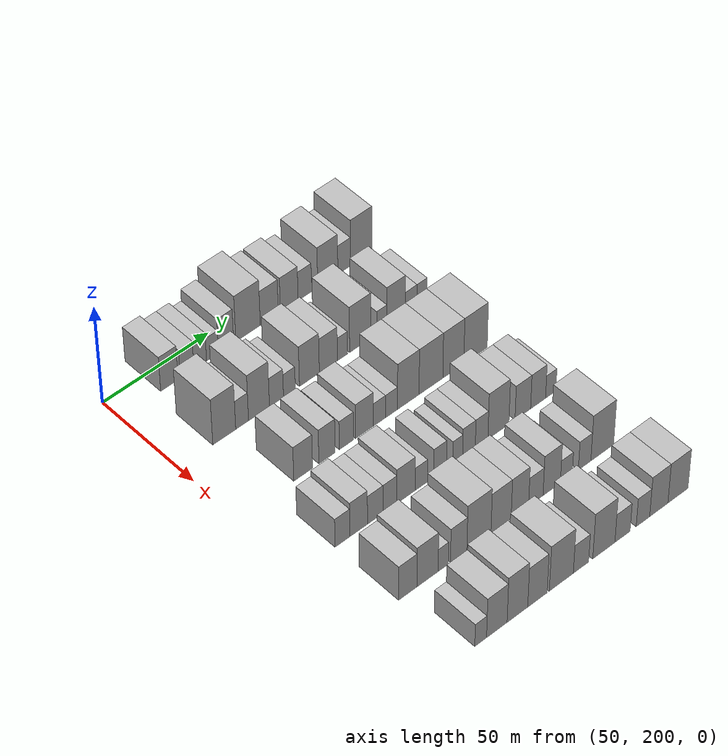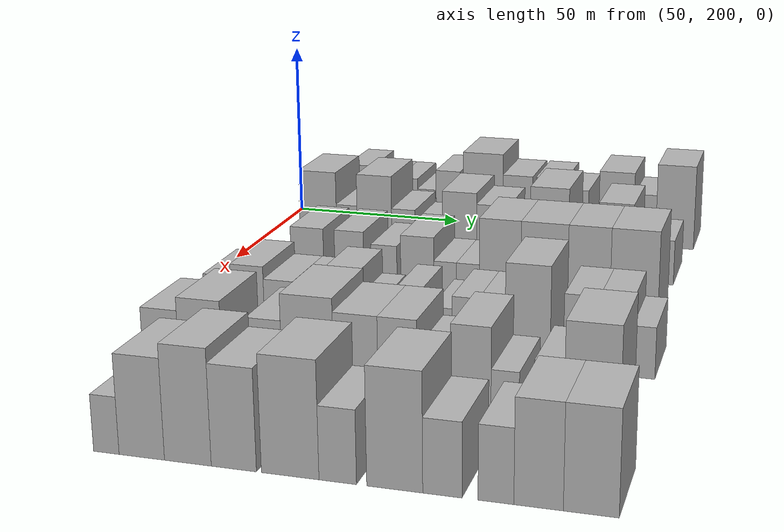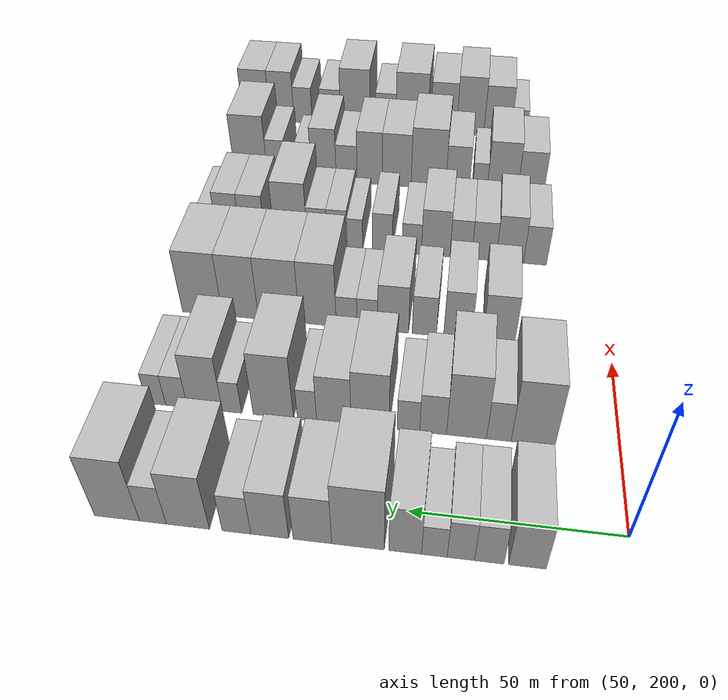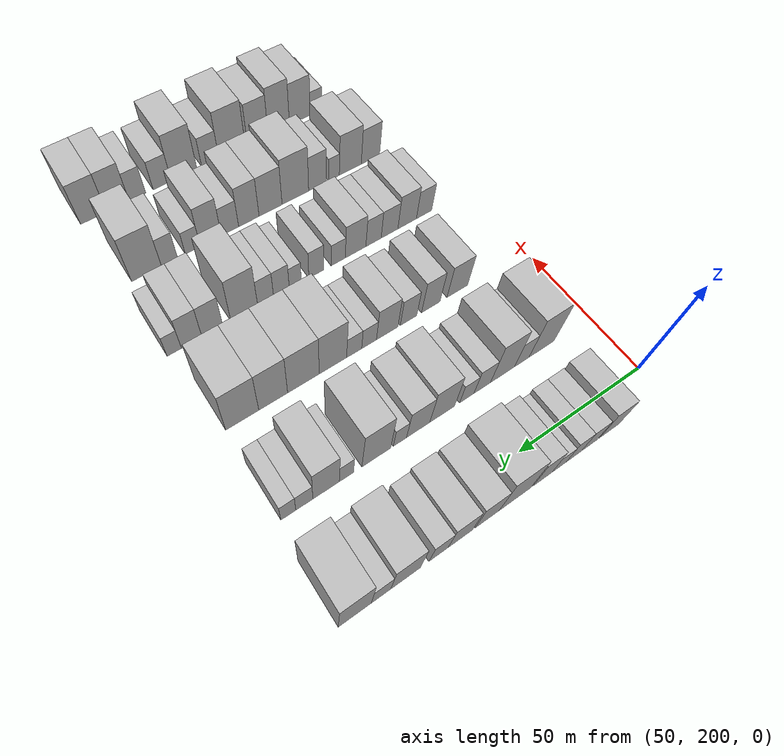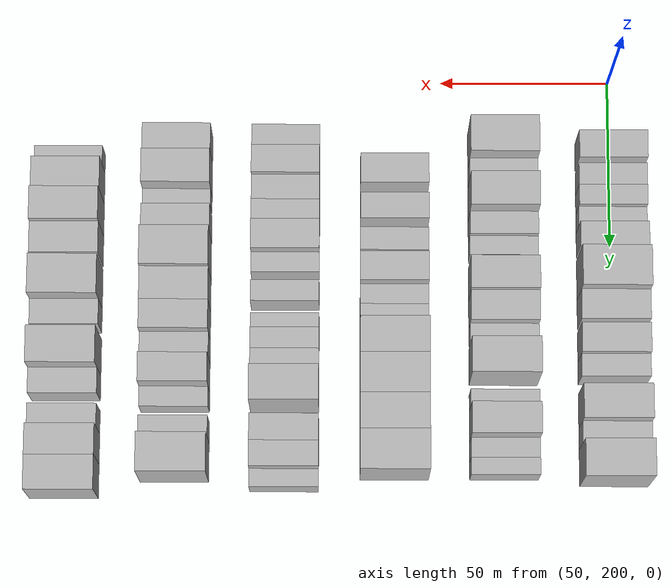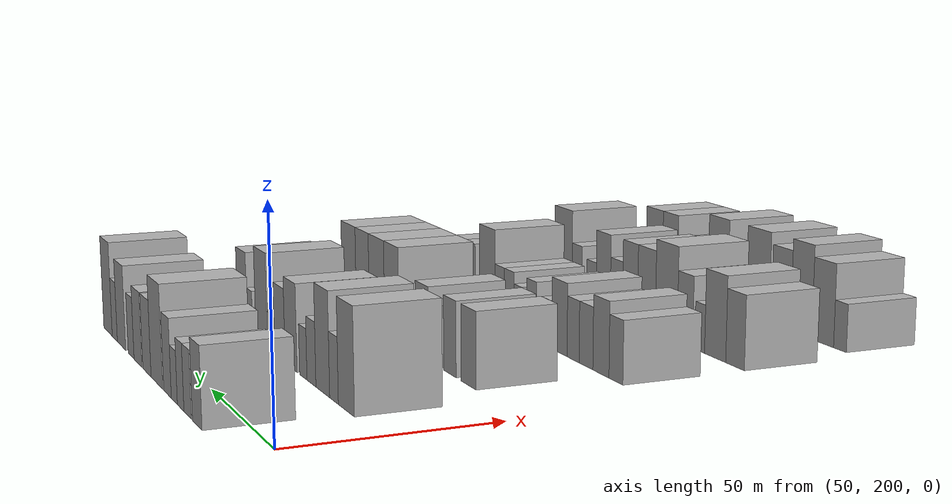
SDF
<sdf version="1.6">
 <world name="default">
  <model name="building_90">
   <static>1</static>
   <pose>50.0000 222.8602 0 0.000000 0.000000 0.000000</pose>
   <link name="link">
    <pose>0 0 9.00 0 0 0</pose>
    <collision name="collision"><geometry><box><size>20.0000 8.2015 18.0000</size></box></geometry></collision>
    <visual name="visual">
     <cast_shadows>0</cast_shadows>
     <geometry><box><size>20.0000 8.2015 18.0000</size></box></geometry>
     <material>
      <script>
       <uri>model://HANNAS_wall/materials/scripts</uri>
       <uri>model://HANNAS_wall/materials/textures</uri>
       <name>vrc/HANNAS_wall</name>
      </script>
     </material>
    </visual>
   </link>
  </model>
  <model name="building_91">
   <static>1</static>
   <pose>50.0000 231.1954 0 0.000000 0.000000 0.000000</pose>
   <link name="link">
    <pose>0 0 7.50 0 0 0</pose>
    <collision name="collision"><geometry><box><size>20.0000 6.4690 15.0000</size></box></geometry></collision>
    <visual name="visual">
     <cast_shadows>0</cast_shadows>
     <geometry><box><size>20.0000 6.4690 15.0000</size></box></geometry>
     <material>
      <script>
       <uri>model://HANNAS_wall/materials/scripts</uri>
       <uri>model://HANNAS_wall/materials/textures</uri>
       <name>vrc/HANNAS_wall</name>
      </script>
     </material>
    </visual>
   </link>
  </model>
  <model name="building_92">
   <static>1</static>
   <pose>50.0000 237.4367 0 0.000000 0.000000 0.000000</pose>
   <link name="link">
    <pose>0 0 7.50 0 0 0</pose>
    <collision name="collision"><geometry><box><size>20.0000 6.0137 15.0000</size></box></geometry></collision>
    <visual name="visual">
     <cast_shadows>0</cast_shadows>
     <geometry><box><size>20.0000 6.0137 15.0000</size></box></geometry>
     <material>
      <script>
       <uri>model://HANNAS_wall/materials/scripts</uri>
       <uri>model://HANNAS_wall/materials/textures</uri>
       <name>vrc/HANNAS_wall</name>
      </script>
     </material>
    </visual>
   </link>
  </model>
  <model name="building_93">
   <static>1</static>
   <pose>50.0000 243.2891 0 0.000000 0.000000 0.000000</pose>
   <link name="link">
    <pose>0 0 6.00 0 0 0</pose>
    <collision name="collision"><geometry><box><size>20.0000 5.6910 12.0000</size></box></geometry></collision>
    <visual name="visual">
     <cast_shadows>0</cast_shadows>
     <geometry><box><size>20.0000 5.6910 12.0000</size></box></geometry>
     <material>
      <script>
       <uri>model://HANNAS_wall/materials/scripts</uri>
       <uri>model://HANNAS_wall/materials/textures</uri>
       <name>vrc/HANNAS_wall</name>
      </script>
     </material>
    </visual>
   </link>
  </model>
  <model name="building_94">
   <static>1</static>
   <pose>50.0000 249.7929 0 0.000000 0.000000 0.000000</pose>
   <link name="link">
    <pose>0 0 9.00 0 0 0</pose>
    <collision name="collision"><geometry><box><size>20.0000 7.3165 18.0000</size></box></geometry></collision>
    <visual name="visual">
     <cast_shadows>0</cast_shadows>
     <geometry><box><size>20.0000 7.3165 18.0000</size></box></geometry>
     <material>
      <script>
       <uri>model://HANNAS_wall/materials/scripts</uri>
       <uri>model://HANNAS_wall/materials/textures</uri>
       <name>vrc/HANNAS_wall</name>
      </script>
     </material>
    </visual>
   </link>
  </model>
  <model name="building_95">
   <static>1</static>
   <pose>50.0000 260.3712 0 0.000000 0.000000 0.000000</pose>
   <link name="link">
    <pose>0 0 12.00 0 0 0</pose>
    <collision name="collision"><geometry><box><size>20.0000 11.8401 24.0000</size></box></geometry></collision>
    <visual name="visual">
     <cast_shadows>0</cast_shadows>
     <geometry><box><size>20.0000 11.8401 24.0000</size></box></geometry>
     <material>
      <script>
       <uri>model://HANNAS_wall/materials/scripts</uri>
       <uri>model://HANNAS_wall/materials/textures</uri>
       <name>vrc/HANNAS_wall</name>
      </script>
     </material>
    </visual>
   </link>
  </model>
  <model name="building_96">
   <static>1</static>
   <pose>50.0000 270.6805 0 0.000000 0.000000 0.000000</pose>
   <link name="link">
    <pose>0 0 9.00 0 0 0</pose>
    <collision name="collision"><geometry><box><size>20.0000 8.7786 18.0000</size></box></geometry></collision>
    <visual name="visual">
     <cast_shadows>0</cast_shadows>
     <geometry><box><size>20.0000 8.7786 18.0000</size></box></geometry>
     <material>
      <script>
       <uri>model://HANNAS_wall/materials/scripts</uri>
       <uri>model://HANNAS_wall/materials/textures</uri>
       <name>vrc/HANNAS_wall</name>
      </script>
     </material>
    </visual>
   </link>
  </model>
  <model name="building_97">
   <static>1</static>
   <pose>50.0000 280.4122 0 0.000000 0.000000 0.000000</pose>
   <link name="link">
    <pose>0 0 9.00 0 0 0</pose>
    <collision name="collision"><geometry><box><size>20.0000 8.6849 18.0000</size></box></geometry></collision>
    <visual name="visual">
     <cast_shadows>0</cast_shadows>
     <geometry><box><size>20.0000 8.6849 18.0000</size></box></geometry>
     <material>
      <script>
       <uri>model://HANNAS_wall/materials/scripts</uri>
       <uri>model://HANNAS_wall/materials/textures</uri>
       <name>vrc/HANNAS_wall</name>
      </script>
     </material>
    </visual>
   </link>
  </model>
  <model name="building_98">
   <static>1</static>
   <pose>50.0000 288.0822 0 0.000000 0.000000 0.000000</pose>
   <link name="link">
    <pose>0 0 7.50 0 0 0</pose>
    <collision name="collision"><geometry><box><size>20.0000 6.6551 15.0000</size></box></geometry></collision>
    <visual name="visual">
     <cast_shadows>0</cast_shadows>
     <geometry><box><size>20.0000 6.6551 15.0000</size></box></geometry>
     <material>
      <script>
       <uri>model://HANNAS_wall/materials/scripts</uri>
       <uri>model://HANNAS_wall/materials/textures</uri>
       <name>vrc/HANNAS_wall</name>
      </script>
     </material>
    </visual>
   </link>
  </model>
  <model name="building_99">
   <static>1</static>
   <pose>50.0000 299.4235 0 0.000000 0.000000 0.000000</pose>
   <link name="link">
    <pose>0 0 10.50 0 0 0</pose>
    <collision name="collision"><geometry><box><size>20.0000 10.0275 21.0000</size></box></geometry></collision>
    <visual name="visual">
     <cast_shadows>0</cast_shadows>
     <geometry><box><size>20.0000 10.0275 21.0000</size></box></geometry>
     <material>
      <script>
       <uri>model://HANNAS_wall/materials/scripts</uri>
       <uri>model://HANNAS_wall/materials/textures</uri>
       <name>vrc/HANNAS_wall</name>
      </script>
     </material>
    </visual>
   </link>
  </model>
  <model name="building_100">
   <static>1</static>
   <pose>50.0000 307.6159 0 0.000000 0.000000 0.000000</pose>
   <link name="link">
    <pose>0 0 7.50 0 0 0</pose>
    <collision name="collision"><geometry><box><size>20.0000 6.3573 15.0000</size></box></geometry></collision>
    <visual name="visual">
     <cast_shadows>0</cast_shadows>
     <geometry><box><size>20.0000 6.3573 15.0000</size></box></geometry>
     <material>
      <script>
       <uri>model://HANNAS_wall/materials/scripts</uri>
       <uri>model://HANNAS_wall/materials/textures</uri>
       <name>vrc/HANNAS_wall</name>
      </script>
     </material>
    </visual>
   </link>
  </model>
  <model name="building_101">
   <static>1</static>
   <pose>50.0000 316.1478 0 0.000000 0.000000 0.000000</pose>
   <link name="link">
    <pose>0 0 12.00 0 0 0</pose>
    <collision name="collision"><geometry><box><size>20.0000 10.7065 24.0000</size></box></geometry></collision>
    <visual name="visual">
     <cast_shadows>0</cast_shadows>
     <geometry><box><size>20.0000 10.7065 24.0000</size></box></geometry>
     <material>
      <script>
       <uri>model://HANNAS_wall/materials/scripts</uri>
       <uri>model://HANNAS_wall/materials/textures</uri>
       <name>vrc/HANNAS_wall</name>
      </script>
     </material>
    </visual>
   </link>
  </model>
  <model name="building_213">
   <static>1</static>
   <pose>82.0000 221.3044 0 0.000000 0.000000 0.000000</pose>
   <link name="link">
    <pose>0 0 12.00 0 0 0</pose>
    <collision name="collision"><geometry><box><size>20.0000 10.7495 24.0000</size></box></geometry></collision>
    <visual name="visual">
     <cast_shadows>0</cast_shadows>
     <geometry><box><size>20.0000 10.7495 24.0000</size></box></geometry>
     <material>
      <script>
       <uri>model://HANNAS_wall/materials/scripts</uri>
       <uri>model://HANNAS_wall/materials/textures</uri>
       <name>vrc/HANNAS_wall</name>
      </script>
     </material>
    </visual>
   </link>
  </model>
  <model name="building_214">
   <static>1</static>
   <pose>82.0000 229.7004 0 0.000000 0.000000 0.000000</pose>
   <link name="link">
    <pose>0 0 7.50 0 0 0</pose>
    <collision name="collision"><geometry><box><size>20.0000 6.0426 15.0000</size></box></geometry></collision>
    <visual name="visual">
     <cast_shadows>0</cast_shadows>
     <geometry><box><size>20.0000 6.0426 15.0000</size></box></geometry>
     <material>
      <script>
       <uri>model://HANNAS_wall/materials/scripts</uri>
       <uri>model://HANNAS_wall/materials/textures</uri>
       <name>vrc/HANNAS_wall</name>
      </script>
     </material>
    </visual>
   </link>
  </model>
  <model name="building_215">
   <static>1</static>
   <pose>82.0000 237.6811 0 0.000000 0.000000 0.000000</pose>
   <link name="link">
    <pose>0 0 12.00 0 0 0</pose>
    <collision name="collision"><geometry><box><size>20.0000 9.9188 24.0000</size></box></geometry></collision>
    <visual name="visual">
     <cast_shadows>0</cast_shadows>
     <geometry><box><size>20.0000 9.9188 24.0000</size></box></geometry>
     <material>
      <script>
       <uri>model://HANNAS_wall/materials/scripts</uri>
       <uri>model://HANNAS_wall/materials/textures</uri>
       <name>vrc/HANNAS_wall</name>
      </script>
     </material>
    </visual>
   </link>
  </model>
  <model name="building_216">
   <static>1</static>
   <pose>82.0000 245.9884 0 0.000000 0.000000 0.000000</pose>
   <link name="link">
    <pose>0 0 7.50 0 0 0</pose>
    <collision name="collision"><geometry><box><size>20.0000 6.6958 15.0000</size></box></geometry></collision>
    <visual name="visual">
     <cast_shadows>0</cast_shadows>
     <geometry><box><size>20.0000 6.6958 15.0000</size></box></geometry>
     <material>
      <script>
       <uri>model://HANNAS_wall/materials/scripts</uri>
       <uri>model://HANNAS_wall/materials/textures</uri>
       <name>vrc/HANNAS_wall</name>
      </script>
     </material>
    </visual>
   </link>
  </model>
  <model name="building_217">
   <static>1</static>
   <pose>82.0000 252.1632 0 0.000000 0.000000 0.000000</pose>
   <link name="link">
    <pose>0 0 6.00 0 0 0</pose>
    <collision name="collision"><geometry><box><size>20.0000 5.6539 12.0000</size></box></geometry></collision>
    <visual name="visual">
     <cast_shadows>0</cast_shadows>
     <geometry><box><size>20.0000 5.6539 12.0000</size></box></geometry>
     <material>
      <script>
       <uri>model://HANNAS_wall/materials/scripts</uri>
       <uri>model://HANNAS_wall/materials/textures</uri>
       <name>vrc/HANNAS_wall</name>
      </script>
     </material>
    </visual>
   </link>
  </model>
  <model name="building_218">
   <static>1</static>
   <pose>82.0000 261.7869 0 0.000000 0.000000 0.000000</pose>
   <link name="link">
    <pose>0 0 10.50 0 0 0</pose>
    <collision name="collision"><geometry><box><size>20.0000 9.5934 21.0000</size></box></geometry></collision>
    <visual name="visual">
     <cast_shadows>0</cast_shadows>
     <geometry><box><size>20.0000 9.5934 21.0000</size></box></geometry>
     <material>
      <script>
       <uri>model://HANNAS_wall/materials/scripts</uri>
       <uri>model://HANNAS_wall/materials/textures</uri>
       <name>vrc/HANNAS_wall</name>
      </script>
     </material>
    </visual>
   </link>
  </model>
  <model name="building_219">
   <static>1</static>
   <pose>82.0000 270.9896 0 0.000000 0.000000 0.000000</pose>
   <link name="link">
    <pose>0 0 9.00 0 0 0</pose>
    <collision name="collision"><geometry><box><size>20.0000 8.8120 18.0000</size></box></geometry></collision>
    <visual name="visual">
     <cast_shadows>0</cast_shadows>
     <geometry><box><size>20.0000 8.8120 18.0000</size></box></geometry>
     <material>
      <script>
       <uri>model://HANNAS_wall/materials/scripts</uri>
       <uri>model://HANNAS_wall/materials/textures</uri>
       <name>vrc/HANNAS_wall</name>
      </script>
     </material>
    </visual>
   </link>
  </model>
  <model name="building_220">
   <static>1</static>
   <pose>82.0000 277.8546 0 0.000000 0.000000 0.000000</pose>
   <link name="link">
    <pose>0 0 6.00 0 0 0</pose>
    <collision name="collision"><geometry><box><size>20.0000 4.9180 12.0000</size></box></geometry></collision>
    <visual name="visual">
     <cast_shadows>0</cast_shadows>
     <geometry><box><size>20.0000 4.9180 12.0000</size></box></geometry>
     <material>
      <script>
       <uri>model://HANNAS_wall/materials/scripts</uri>
       <uri>model://HANNAS_wall/materials/textures</uri>
       <name>vrc/HANNAS_wall</name>
      </script>
     </material>
    </visual>
   </link>
  </model>
  <model name="building_221">
   <static>1</static>
   <pose>82.0000 286.5206 0 0.000000 0.000000 0.000000</pose>
   <link name="link">
    <pose>0 0 12.00 0 0 0</pose>
    <collision name="collision"><geometry><box><size>20.0000 10.4140 24.0000</size></box></geometry></collision>
    <visual name="visual">
     <cast_shadows>0</cast_shadows>
     <geometry><box><size>20.0000 10.4140 24.0000</size></box></geometry>
     <material>
      <script>
       <uri>model://HANNAS_wall/materials/scripts</uri>
       <uri>model://HANNAS_wall/materials/textures</uri>
       <name>vrc/HANNAS_wall</name>
      </script>
     </material>
    </visual>
   </link>
  </model>
  <model name="building_222">
   <static>1</static>
   <pose>82.0000 297.2348 0 0.000000 0.000000 0.000000</pose>
   <link name="link">
    <pose>0 0 6.00 0 0 0</pose>
    <collision name="collision"><geometry><box><size>20.0000 5.0144 12.0000</size></box></geometry></collision>
    <visual name="visual">
     <cast_shadows>0</cast_shadows>
     <geometry><box><size>20.0000 5.0144 12.0000</size></box></geometry>
     <material>
      <script>
       <uri>model://HANNAS_wall/materials/scripts</uri>
       <uri>model://HANNAS_wall/materials/textures</uri>
       <name>vrc/HANNAS_wall</name>
      </script>
     </material>
    </visual>
   </link>
  </model>
  <model name="building_223">
   <static>1</static>
   <pose>82.0000 304.3228 0 0.000000 0.000000 0.000000</pose>
   <link name="link">
    <pose>0 0 10.50 0 0 0</pose>
    <collision name="collision"><geometry><box><size>20.0000 9.1617 21.0000</size></box></geometry></collision>
    <visual name="visual">
     <cast_shadows>0</cast_shadows>
     <geometry><box><size>20.0000 9.1617 21.0000</size></box></geometry>
     <material>
      <script>
       <uri>model://HANNAS_wall/materials/scripts</uri>
       <uri>model://HANNAS_wall/materials/textures</uri>
       <name>vrc/HANNAS_wall</name>
      </script>
     </material>
    </visual>
   </link>
  </model>
  <model name="building_224">
   <static>1</static>
   <pose>82.0000 311.7892 0 0.000000 0.000000 0.000000</pose>
   <link name="link">
    <pose>0 0 6.00 0 0 0</pose>
    <collision name="collision"><geometry><box><size>20.0000 5.7710 12.0000</size></box></geometry></collision>
    <visual name="visual">
     <cast_shadows>0</cast_shadows>
     <geometry><box><size>20.0000 5.7710 12.0000</size></box></geometry>
     <material>
      <script>
       <uri>model://HANNAS_wall/materials/scripts</uri>
       <uri>model://HANNAS_wall/materials/textures</uri>
       <name>vrc/HANNAS_wall</name>
      </script>
     </material>
    </visual>
   </link>
  </model>
  <model name="building_225">
   <static>1</static>
   <pose>82.0000 317.1797 0 0.000000 0.000000 0.000000</pose>
   <link name="link">
    <pose>0 0 6.00 0 0 0</pose>
    <collision name="collision"><geometry><box><size>20.0000 5.0100 12.0000</size></box></geometry></collision>
    <visual name="visual">
     <cast_shadows>0</cast_shadows>
     <geometry><box><size>20.0000 5.0100 12.0000</size></box></geometry>
     <material>
      <script>
       <uri>model://HANNAS_wall/materials/scripts</uri>
       <uri>model://HANNAS_wall/materials/textures</uri>
       <name>vrc/HANNAS_wall</name>
      </script>
     </material>
    </visual>
   </link>
  </model>
  <model name="building_337">
   <static>1</static>
   <pose>114.0000 230.3294 0 0.000000 0.000000 0.000000</pose>
   <link name="link">
    <pose>0 0 9.00 0 0 0</pose>
    <collision name="collision"><geometry><box><size>20.0000 8.8366 18.0000</size></box></geometry></collision>
    <visual name="visual">
     <cast_shadows>0</cast_shadows>
     <geometry><box><size>20.0000 8.8366 18.0000</size></box></geometry>
     <material>
      <script>
       <uri>model://HANNAS_wall/materials/scripts</uri>
       <uri>model://HANNAS_wall/materials/textures</uri>
       <name>vrc/HANNAS_wall</name>
      </script>
     </material>
    </visual>
   </link>
  </model>
  <model name="building_338">
   <static>1</static>
   <pose>114.0000 241.6005 0 0.000000 0.000000 0.000000</pose>
   <link name="link">
    <pose>0 0 9.00 0 0 0</pose>
    <collision name="collision"><geometry><box><size>20.0000 7.7056 18.0000</size></box></geometry></collision>
    <visual name="visual">
     <cast_shadows>0</cast_shadows>
     <geometry><box><size>20.0000 7.7056 18.0000</size></box></geometry>
     <material>
      <script>
       <uri>model://HANNAS_wall/materials/scripts</uri>
       <uri>model://HANNAS_wall/materials/textures</uri>
       <name>vrc/HANNAS_wall</name>
      </script>
     </material>
    </visual>
   </link>
  </model>
  <model name="building_339">
   <static>1</static>
   <pose>114.0000 250.8308 0 0.000000 0.000000 0.000000</pose>
   <link name="link">
    <pose>0 0 7.50 0 0 0</pose>
    <collision name="collision"><geometry><box><size>20.0000 6.7550 15.0000</size></box></geometry></collision>
    <visual name="visual">
     <cast_shadows>0</cast_shadows>
     <geometry><box><size>20.0000 6.7550 15.0000</size></box></geometry>
     <material>
      <script>
       <uri>model://HANNAS_wall/materials/scripts</uri>
       <uri>model://HANNAS_wall/materials/textures</uri>
       <name>vrc/HANNAS_wall</name>
      </script>
     </material>
    </visual>
   </link>
  </model>
  <model name="building_340">
   <static>1</static>
   <pose>114.0000 259.4964 0 0.000000 0.000000 0.000000</pose>
   <link name="link">
    <pose>0 0 9.00 0 0 0</pose>
    <collision name="collision"><geometry><box><size>20.0000 8.5762 18.0000</size></box></geometry></collision>
    <visual name="visual">
     <cast_shadows>0</cast_shadows>
     <geometry><box><size>20.0000 8.5762 18.0000</size></box></geometry>
     <material>
      <script>
       <uri>model://HANNAS_wall/materials/scripts</uri>
       <uri>model://HANNAS_wall/materials/textures</uri>
       <name>vrc/HANNAS_wall</name>
      </script>
     </material>
    </visual>
   </link>
  </model>
  <model name="building_341">
   <static>1</static>
   <pose>114.0000 266.7092 0 0.000000 0.000000 0.000000</pose>
   <link name="link">
    <pose>0 0 6.00 0 0 0</pose>
    <collision name="collision"><geometry><box><size>20.0000 5.8494 12.0000</size></box></geometry></collision>
    <visual name="visual">
     <cast_shadows>0</cast_shadows>
     <geometry><box><size>20.0000 5.8494 12.0000</size></box></geometry>
     <material>
      <script>
       <uri>model://HANNAS_wall/materials/scripts</uri>
       <uri>model://HANNAS_wall/materials/textures</uri>
       <name>vrc/HANNAS_wall</name>
      </script>
     </material>
    </visual>
   </link>
  </model>
  <model name="building_342">
   <static>1</static>
   <pose>114.0000 272.5642 0 0.000000 0.000000 0.000000</pose>
   <link name="link">
    <pose>0 0 6.00 0 0 0</pose>
    <collision name="collision"><geometry><box><size>20.0000 5.8606 12.0000</size></box></geometry></collision>
    <visual name="visual">
     <cast_shadows>0</cast_shadows>
     <geometry><box><size>20.0000 5.8606 12.0000</size></box></geometry>
     <material>
      <script>
       <uri>model://HANNAS_wall/materials/scripts</uri>
       <uri>model://HANNAS_wall/materials/textures</uri>
       <name>vrc/HANNAS_wall</name>
      </script>
     </material>
    </visual>
   </link>
  </model>
  <model name="building_343">
   <static>1</static>
   <pose>114.0000 280.7359 0 0.000000 0.000000 0.000000</pose>
   <link name="link">
    <pose>0 0 12.00 0 0 0</pose>
    <collision name="collision"><geometry><box><size>20.0000 10.4827 24.0000</size></box></geometry></collision>
    <visual name="visual">
     <cast_shadows>0</cast_shadows>
     <geometry><box><size>20.0000 10.4827 24.0000</size></box></geometry>
     <material>
      <script>
       <uri>model://HANNAS_wall/materials/scripts</uri>
       <uri>model://HANNAS_wall/materials/textures</uri>
       <name>vrc/HANNAS_wall</name>
      </script>
     </material>
    </visual>
   </link>
  </model>
  <model name="building_344">
   <static>1</static>
   <pose>114.0000 291.8193 0 0.000000 0.000000 0.000000</pose>
   <link name="link">
    <pose>0 0 12.00 0 0 0</pose>
    <collision name="collision"><geometry><box><size>20.0000 11.6842 24.0000</size></box></geometry></collision>
    <visual name="visual">
     <cast_shadows>0</cast_shadows>
     <geometry><box><size>20.0000 11.6842 24.0000</size></box></geometry>
     <material>
      <script>
       <uri>model://HANNAS_wall/materials/scripts</uri>
       <uri>model://HANNAS_wall/materials/textures</uri>
       <name>vrc/HANNAS_wall</name>
      </script>
     </material>
    </visual>
   </link>
  </model>
  <model name="building_345">
   <static>1</static>
   <pose>114.0000 302.8667 0 0.000000 0.000000 0.000000</pose>
   <link name="link">
    <pose>0 0 12.00 0 0 0</pose>
    <collision name="collision"><geometry><box><size>20.0000 10.4106 24.0000</size></box></geometry></collision>
    <visual name="visual">
     <cast_shadows>0</cast_shadows>
     <geometry><box><size>20.0000 10.4106 24.0000</size></box></geometry>
     <material>
      <script>
       <uri>model://HANNAS_wall/materials/scripts</uri>
       <uri>model://HANNAS_wall/materials/textures</uri>
       <name>vrc/HANNAS_wall</name>
      </script>
     </material>
    </visual>
   </link>
  </model>
  <model name="building_346">
   <static>1</static>
   <pose>114.0000 313.8992 0 0.000000 0.000000 0.000000</pose>
   <link name="link">
    <pose>0 0 12.00 0 0 0</pose>
    <collision name="collision"><geometry><box><size>20.0000 11.6543 24.0000</size></box></geometry></collision>
    <visual name="visual">
     <cast_shadows>0</cast_shadows>
     <geometry><box><size>20.0000 11.6543 24.0000</size></box></geometry>
     <material>
      <script>
       <uri>model://HANNAS_wall/materials/scripts</uri>
       <uri>model://HANNAS_wall/materials/textures</uri>
       <name>vrc/HANNAS_wall</name>
      </script>
     </material>
    </visual>
   </link>
  </model>
  <model name="building_453">
   <static>1</static>
   <pose>146.0000 220.0630 0 0.000000 0.000000 0.000000</pose>
   <link name="link">
    <pose>0 0 7.50 0 0 0</pose>
    <collision name="collision"><geometry><box><size>20.0000 6.9078 15.0000</size></box></geometry></collision>
    <visual name="visual">
     <cast_shadows>0</cast_shadows>
     <geometry><box><size>20.0000 6.9078 15.0000</size></box></geometry>
     <material>
      <script>
       <uri>model://HANNAS_wall/materials/scripts</uri>
       <uri>model://HANNAS_wall/materials/textures</uri>
       <name>vrc/HANNAS_wall</name>
      </script>
     </material>
    </visual>
   </link>
  </model>
  <model name="building_454">
   <static>1</static>
   <pose>146.0000 227.6513 0 0.000000 0.000000 0.000000</pose>
   <link name="link">
    <pose>0 0 9.00 0 0 0</pose>
    <collision name="collision"><geometry><box><size>20.0000 8.2689 18.0000</size></box></geometry></collision>
    <visual name="visual">
     <cast_shadows>0</cast_shadows>
     <geometry><box><size>20.0000 8.2689 18.0000</size></box></geometry>
     <material>
      <script>
       <uri>model://HANNAS_wall/materials/scripts</uri>
       <uri>model://HANNAS_wall/materials/textures</uri>
       <name>vrc/HANNAS_wall</name>
      </script>
     </material>
    </visual>
   </link>
  </model>
  <model name="building_455">
   <static>1</static>
   <pose>146.0000 235.4424 0 0.000000 0.000000 0.000000</pose>
   <link name="link">
    <pose>0 0 7.50 0 0 0</pose>
    <collision name="collision"><geometry><box><size>20.0000 7.3133 15.0000</size></box></geometry></collision>
    <visual name="visual">
     <cast_shadows>0</cast_shadows>
     <geometry><box><size>20.0000 7.3133 15.0000</size></box></geometry>
     <material>
      <script>
       <uri>model://HANNAS_wall/materials/scripts</uri>
       <uri>model://HANNAS_wall/materials/textures</uri>
       <name>vrc/HANNAS_wall</name>
      </script>
     </material>
    </visual>
   </link>
  </model>
  <model name="building_456">
   <static>1</static>
   <pose>146.0000 242.3882 0 0.000000 0.000000 0.000000</pose>
   <link name="link">
    <pose>0 0 7.50 0 0 0</pose>
    <collision name="collision"><geometry><box><size>20.0000 6.5782 15.0000</size></box></geometry></collision>
    <visual name="visual">
     <cast_shadows>0</cast_shadows>
     <geometry><box><size>20.0000 6.5782 15.0000</size></box></geometry>
     <material>
      <script>
       <uri>model://HANNAS_wall/materials/scripts</uri>
       <uri>model://HANNAS_wall/materials/textures</uri>
       <name>vrc/HANNAS_wall</name>
      </script>
     </material>
    </visual>
   </link>
  </model>
  <model name="building_457">
   <static>1</static>
   <pose>146.0000 250.0303 0 0.000000 0.000000 0.000000</pose>
   <link name="link">
    <pose>0 0 9.00 0 0 0</pose>
    <collision name="collision"><geometry><box><size>20.0000 8.7062 18.0000</size></box></geometry></collision>
    <visual name="visual">
     <cast_shadows>0</cast_shadows>
     <geometry><box><size>20.0000 8.7062 18.0000</size></box></geometry>
     <material>
      <script>
       <uri>model://HANNAS_wall/materials/scripts</uri>
       <uri>model://HANNAS_wall/materials/textures</uri>
       <name>vrc/HANNAS_wall</name>
      </script>
     </material>
    </visual>
   </link>
  </model>
  <model name="building_458">
   <static>1</static>
   <pose>146.0000 257.3340 0 0.000000 0.000000 0.000000</pose>
   <link name="link">
    <pose>0 0 6.00 0 0 0</pose>
    <collision name="collision"><geometry><box><size>20.0000 5.9013 12.0000</size></box></geometry></collision>
    <visual name="visual">
     <cast_shadows>0</cast_shadows>
     <geometry><box><size>20.0000 5.9013 12.0000</size></box></geometry>
     <material>
      <script>
       <uri>model://HANNAS_wall/materials/scripts</uri>
       <uri>model://HANNAS_wall/materials/textures</uri>
       <name>vrc/HANNAS_wall</name>
      </script>
     </material>
    </visual>
   </link>
  </model>
  <model name="building_459">
   <static>1</static>
   <pose>146.0000 266.3471 0 0.000000 0.000000 0.000000</pose>
   <link name="link">
    <pose>0 0 7.50 0 0 0</pose>
    <collision name="collision"><geometry><box><size>20.0000 6.1248 15.0000</size></box></geometry></collision>
    <visual name="visual">
     <cast_shadows>0</cast_shadows>
     <geometry><box><size>20.0000 6.1248 15.0000</size></box></geometry>
     <material>
      <script>
       <uri>model://HANNAS_wall/materials/scripts</uri>
       <uri>model://HANNAS_wall/materials/textures</uri>
       <name>vrc/HANNAS_wall</name>
      </script>
     </material>
    </visual>
   </link>
  </model>
  <model name="building_460">
   <static>1</static>
   <pose>146.0000 274.8221 0 0.000000 0.000000 0.000000</pose>
   <link name="link">
    <pose>0 0 6.00 0 0 0</pose>
    <collision name="collision"><geometry><box><size>20.0000 4.8253 12.0000</size></box></geometry></collision>
    <visual name="visual">
     <cast_shadows>0</cast_shadows>
     <geometry><box><size>20.0000 4.8253 12.0000</size></box></geometry>
     <material>
      <script>
       <uri>model://HANNAS_wall/materials/scripts</uri>
       <uri>model://HANNAS_wall/materials/textures</uri>
       <name>vrc/HANNAS_wall</name>
      </script>
     </material>
    </visual>
   </link>
  </model>
  <model name="building_461">
   <static>1</static>
   <pose>146.0000 280.3233 0 0.000000 0.000000 0.000000</pose>
   <link name="link">
    <pose>0 0 7.50 0 0 0</pose>
    <collision name="collision"><geometry><box><size>20.0000 6.1771 15.0000</size></box></geometry></collision>
    <visual name="visual">
     <cast_shadows>0</cast_shadows>
     <geometry><box><size>20.0000 6.1771 15.0000</size></box></geometry>
     <material>
      <script>
       <uri>model://HANNAS_wall/materials/scripts</uri>
       <uri>model://HANNAS_wall/materials/textures</uri>
       <name>vrc/HANNAS_wall</name>
      </script>
     </material>
    </visual>
   </link>
  </model>
  <model name="building_462">
   <static>1</static>
   <pose>146.0000 286.5018 0 0.000000 0.000000 0.000000</pose>
   <link name="link">
    <pose>0 0 7.50 0 0 0</pose>
    <collision name="collision"><geometry><box><size>20.0000 6.1799 15.0000</size></box></geometry></collision>
    <visual name="visual">
     <cast_shadows>0</cast_shadows>
     <geometry><box><size>20.0000 6.1799 15.0000</size></box></geometry>
     <material>
      <script>
       <uri>model://HANNAS_wall/materials/scripts</uri>
       <uri>model://HANNAS_wall/materials/textures</uri>
       <name>vrc/HANNAS_wall</name>
      </script>
     </material>
    </visual>
   </link>
  </model>
  <model name="building_463">
   <static>1</static>
   <pose>146.0000 294.7478 0 0.000000 0.000000 0.000000</pose>
   <link name="link">
    <pose>0 0 12.00 0 0 0</pose>
    <collision name="collision"><geometry><box><size>20.0000 10.3122 24.0000</size></box></geometry></collision>
    <visual name="visual">
     <cast_shadows>0</cast_shadows>
     <geometry><box><size>20.0000 10.3122 24.0000</size></box></geometry>
     <material>
      <script>
       <uri>model://HANNAS_wall/materials/scripts</uri>
       <uri>model://HANNAS_wall/materials/textures</uri>
       <name>vrc/HANNAS_wall</name>
      </script>
     </material>
    </visual>
   </link>
  </model>
  <model name="building_464">
   <static>1</static>
   <pose>146.0000 306.7866 0 0.000000 0.000000 0.000000</pose>
   <link name="link">
    <pose>0 0 9.00 0 0 0</pose>
    <collision name="collision"><geometry><box><size>20.0000 7.7654 18.0000</size></box></geometry></collision>
    <visual name="visual">
     <cast_shadows>0</cast_shadows>
     <geometry><box><size>20.0000 7.7654 18.0000</size></box></geometry>
     <material>
      <script>
       <uri>model://HANNAS_wall/materials/scripts</uri>
       <uri>model://HANNAS_wall/materials/textures</uri>
       <name>vrc/HANNAS_wall</name>
      </script>
     </material>
    </visual>
   </link>
  </model>
  <model name="building_465">
   <static>1</static>
   <pose>146.0000 314.3967 0 0.000000 0.000000 0.000000</pose>
   <link name="link">
    <pose>0 0 9.00 0 0 0</pose>
    <collision name="collision"><geometry><box><size>20.0000 7.4548 18.0000</size></box></geometry></collision>
    <visual name="visual">
     <cast_shadows>0</cast_shadows>
     <geometry><box><size>20.0000 7.4548 18.0000</size></box></geometry>
     <material>
      <script>
       <uri>model://HANNAS_wall/materials/scripts</uri>
       <uri>model://HANNAS_wall/materials/textures</uri>
       <name>vrc/HANNAS_wall</name>
      </script>
     </material>
    </visual>
   </link>
  </model>
  <model name="building_466">
   <static>1</static>
   <pose>146.0000 320.7134 0 0.000000 0.000000 0.000000</pose>
   <link name="link">
    <pose>0 0 6.00 0 0 0</pose>
    <collision name="collision"><geometry><box><size>20.0000 5.1786 12.0000</size></box></geometry></collision>
    <visual name="visual">
     <cast_shadows>0</cast_shadows>
     <geometry><box><size>20.0000 5.1786 12.0000</size></box></geometry>
     <material>
      <script>
       <uri>model://HANNAS_wall/materials/scripts</uri>
       <uri>model://HANNAS_wall/materials/textures</uri>
       <name>vrc/HANNAS_wall</name>
      </script>
     </material>
    </visual>
   </link>
  </model>
  <model name="building_576">
   <static>1</static>
   <pose>178.0000 221.2381 0 0.000000 0.000000 0.000000</pose>
   <link name="link">
    <pose>0 0 9.00 0 0 0</pose>
    <collision name="collision"><geometry><box><size>20.0000 8.4650 18.0000</size></box></geometry></collision>
    <visual name="visual">
     <cast_shadows>0</cast_shadows>
     <geometry><box><size>20.0000 8.4650 18.0000</size></box></geometry>
     <material>
      <script>
       <uri>model://HANNAS_wall/materials/scripts</uri>
       <uri>model://HANNAS_wall/materials/textures</uri>
       <name>vrc/HANNAS_wall</name>
      </script>
     </material>
    </visual>
   </link>
  </model>
  <model name="building_577">
   <static>1</static>
   <pose>178.0000 230.4623 0 0.000000 0.000000 0.000000</pose>
   <link name="link">
    <pose>0 0 10.50 0 0 0</pose>
    <collision name="collision"><geometry><box><size>20.0000 9.9835 21.0000</size></box></geometry></collision>
    <visual name="visual">
     <cast_shadows>0</cast_shadows>
     <geometry><box><size>20.0000 9.9835 21.0000</size></box></geometry>
     <material>
      <script>
       <uri>model://HANNAS_wall/materials/scripts</uri>
       <uri>model://HANNAS_wall/materials/textures</uri>
       <name>vrc/HANNAS_wall</name>
      </script>
     </material>
    </visual>
   </link>
  </model>
  <model name="building_578">
   <static>1</static>
   <pose>178.0000 237.8578 0 0.000000 0.000000 0.000000</pose>
   <link name="link">
    <pose>0 0 6.00 0 0 0</pose>
    <collision name="collision"><geometry><box><size>20.0000 4.8075 12.0000</size></box></geometry></collision>
    <visual name="visual">
     <cast_shadows>0</cast_shadows>
     <geometry><box><size>20.0000 4.8075 12.0000</size></box></geometry>
     <material>
      <script>
       <uri>model://HANNAS_wall/materials/scripts</uri>
       <uri>model://HANNAS_wall/materials/textures</uri>
       <name>vrc/HANNAS_wall</name>
      </script>
     </material>
    </visual>
   </link>
  </model>
  <model name="building_579">
   <static>1</static>
   <pose>178.0000 245.1525 0 0.000000 0.000000 0.000000</pose>
   <link name="link">
    <pose>0 0 9.00 0 0 0</pose>
    <collision name="collision"><geometry><box><size>20.0000 7.7819 18.0000</size></box></geometry></collision>
    <visual name="visual">
     <cast_shadows>0</cast_shadows>
     <geometry><box><size>20.0000 7.7819 18.0000</size></box></geometry>
     <material>
      <script>
       <uri>model://HANNAS_wall/materials/scripts</uri>
       <uri>model://HANNAS_wall/materials/textures</uri>
       <name>vrc/HANNAS_wall</name>
      </script>
     </material>
    </visual>
   </link>
  </model>
  <model name="building_580">
   <static>1</static>
   <pose>178.0000 254.7879 0 0.000000 0.000000 0.000000</pose>
   <link name="link">
    <pose>0 0 12.00 0 0 0</pose>
    <collision name="collision"><geometry><box><size>20.0000 11.4891 24.0000</size></box></geometry></collision>
    <visual name="visual">
     <cast_shadows>0</cast_shadows>
     <geometry><box><size>20.0000 11.4891 24.0000</size></box></geometry>
     <material>
      <script>
       <uri>model://HANNAS_wall/materials/scripts</uri>
       <uri>model://HANNAS_wall/materials/textures</uri>
       <name>vrc/HANNAS_wall</name>
      </script>
     </material>
    </visual>
   </link>
  </model>
  <model name="building_581">
   <static>1</static>
   <pose>178.0000 265.3784 0 0.000000 0.000000 0.000000</pose>
   <link name="link">
    <pose>0 0 10.50 0 0 0</pose>
    <collision name="collision"><geometry><box><size>20.0000 9.6919 21.0000</size></box></geometry></collision>
    <visual name="visual">
     <cast_shadows>0</cast_shadows>
     <geometry><box><size>20.0000 9.6919 21.0000</size></box></geometry>
     <material>
      <script>
       <uri>model://HANNAS_wall/materials/scripts</uri>
       <uri>model://HANNAS_wall/materials/textures</uri>
       <name>vrc/HANNAS_wall</name>
      </script>
     </material>
    </visual>
   </link>
  </model>
  <model name="building_582">
   <static>1</static>
   <pose>178.0000 274.4435 0 0.000000 0.000000 0.000000</pose>
   <link name="link">
    <pose>0 0 10.50 0 0 0</pose>
    <collision name="collision"><geometry><box><size>20.0000 8.4382 21.0000</size></box></geometry></collision>
    <visual name="visual">
     <cast_shadows>0</cast_shadows>
     <geometry><box><size>20.0000 8.4382 21.0000</size></box></geometry>
     <material>
      <script>
       <uri>model://HANNAS_wall/materials/scripts</uri>
       <uri>model://HANNAS_wall/materials/textures</uri>
       <name>vrc/HANNAS_wall</name>
      </script>
     </material>
    </visual>
   </link>
  </model>
  <model name="building_583">
   <static>1</static>
   <pose>178.0000 282.1900 0 0.000000 0.000000 0.000000</pose>
   <link name="link">
    <pose>0 0 7.50 0 0 0</pose>
    <collision name="collision"><geometry><box><size>20.0000 7.0546 15.0000</size></box></geometry></collision>
    <visual name="visual">
     <cast_shadows>0</cast_shadows>
     <geometry><box><size>20.0000 7.0546 15.0000</size></box></geometry>
     <material>
      <script>
       <uri>model://HANNAS_wall/materials/scripts</uri>
       <uri>model://HANNAS_wall/materials/textures</uri>
       <name>vrc/HANNAS_wall</name>
      </script>
     </material>
    </visual>
   </link>
  </model>
  <model name="building_584">
   <static>1</static>
   <pose>178.0000 289.9632 0 0.000000 0.000000 0.000000</pose>
   <link name="link">
    <pose>0 0 10.50 0 0 0</pose>
    <collision name="collision"><geometry><box><size>20.0000 8.4919 21.0000</size></box></geometry></collision>
    <visual name="visual">
     <cast_shadows>0</cast_shadows>
     <geometry><box><size>20.0000 8.4919 21.0000</size></box></geometry>
     <material>
      <script>
       <uri>model://HANNAS_wall/materials/scripts</uri>
       <uri>model://HANNAS_wall/materials/textures</uri>
       <name>vrc/HANNAS_wall</name>
      </script>
     </material>
    </visual>
   </link>
  </model>
  <model name="building_585">
   <static>1</static>
   <pose>178.0000 297.1403 0 0.000000 0.000000 0.000000</pose>
   <link name="link">
    <pose>0 0 6.00 0 0 0</pose>
    <collision name="collision"><geometry><box><size>20.0000 5.8623 12.0000</size></box></geometry></collision>
    <visual name="visual">
     <cast_shadows>0</cast_shadows>
     <geometry><box><size>20.0000 5.8623 12.0000</size></box></geometry>
     <material>
      <script>
       <uri>model://HANNAS_wall/materials/scripts</uri>
       <uri>model://HANNAS_wall/materials/textures</uri>
       <name>vrc/HANNAS_wall</name>
      </script>
     </material>
    </visual>
   </link>
  </model>
  <model name="building_586">
   <static>1</static>
   <pose>178.0000 306.1709 0 0.000000 0.000000 0.000000</pose>
   <link name="link">
    <pose>0 0 7.50 0 0 0</pose>
    <collision name="collision"><geometry><box><size>20.0000 6.1990 15.0000</size></box></geometry></collision>
    <visual name="visual">
     <cast_shadows>0</cast_shadows>
     <geometry><box><size>20.0000 6.1990 15.0000</size></box></geometry>
     <material>
      <script>
       <uri>model://HANNAS_wall/materials/scripts</uri>
       <uri>model://HANNAS_wall/materials/textures</uri>
       <name>vrc/HANNAS_wall</name>
      </script>
     </material>
    </visual>
   </link>
  </model>
  <model name="building_587">
   <static>1</static>
   <pose>178.0000 314.9374 0 0.000000 0.000000 0.000000</pose>
   <link name="link">
    <pose>0 0 12.00 0 0 0</pose>
    <collision name="collision"><geometry><box><size>20.0000 11.3339 24.0000</size></box></geometry></collision>
    <visual name="visual">
     <cast_shadows>0</cast_shadows>
     <geometry><box><size>20.0000 11.3339 24.0000</size></box></geometry>
     <material>
      <script>
       <uri>model://HANNAS_wall/materials/scripts</uri>
       <uri>model://HANNAS_wall/materials/textures</uri>
       <name>vrc/HANNAS_wall</name>
      </script>
     </material>
    </visual>
   </link>
  </model>
  <model name="building_690">
   <static>1</static>
   <pose>210.0000 225.1792 0 0.000000 0.000000 0.000000</pose>
   <link name="link">
    <pose>0 0 6.00 0 0 0</pose>
    <collision name="collision"><geometry><box><size>20.0000 5.4713 12.0000</size></box></geometry></collision>
    <visual name="visual">
     <cast_shadows>0</cast_shadows>
     <geometry><box><size>20.0000 5.4713 12.0000</size></box></geometry>
     <material>
      <script>
       <uri>model://HANNAS_wall/materials/scripts</uri>
       <uri>model://HANNAS_wall/materials/textures</uri>
       <name>vrc/HANNAS_wall</name>
      </script>
     </material>
    </visual>
   </link>
  </model>
  <model name="building_691">
   <static>1</static>
   <pose>210.0000 232.7304 0 0.000000 0.000000 0.000000</pose>
   <link name="link">
    <pose>0 0 10.50 0 0 0</pose>
    <collision name="collision"><geometry><box><size>20.0000 9.6310 21.0000</size></box></geometry></collision>
    <visual name="visual">
     <cast_shadows>0</cast_shadows>
     <geometry><box><size>20.0000 9.6310 21.0000</size></box></geometry>
     <material>
      <script>
       <uri>model://HANNAS_wall/materials/scripts</uri>
       <uri>model://HANNAS_wall/materials/textures</uri>
       <name>vrc/HANNAS_wall</name>
      </script>
     </material>
    </visual>
   </link>
  </model>
  <model name="building_692">
   <static>1</static>
   <pose>210.0000 242.4196 0 0.000000 0.000000 0.000000</pose>
   <link name="link">
    <pose>0 0 12.00 0 0 0</pose>
    <collision name="collision"><geometry><box><size>20.0000 9.7474 24.0000</size></box></geometry></collision>
    <visual name="visual">
     <cast_shadows>0</cast_shadows>
     <geometry><box><size>20.0000 9.7474 24.0000</size></box></geometry>
     <material>
      <script>
       <uri>model://HANNAS_wall/materials/scripts</uri>
       <uri>model://HANNAS_wall/materials/textures</uri>
       <name>vrc/HANNAS_wall</name>
      </script>
     </material>
    </visual>
   </link>
  </model>
  <model name="building_693">
   <static>1</static>
   <pose>210.0000 251.9173 0 0.000000 0.000000 0.000000</pose>
   <link name="link">
    <pose>0 0 10.50 0 0 0</pose>
    <collision name="collision"><geometry><box><size>20.0000 9.2479 21.0000</size></box></geometry></collision>
    <visual name="visual">
     <cast_shadows>0</cast_shadows>
     <geometry><box><size>20.0000 9.2479 21.0000</size></box></geometry>
     <material>
      <script>
       <uri>model://HANNAS_wall/materials/scripts</uri>
       <uri>model://HANNAS_wall/materials/textures</uri>
       <name>vrc/HANNAS_wall</name>
      </script>
     </material>
    </visual>
   </link>
  </model>
  <model name="building_694">
   <static>1</static>
   <pose>210.0000 263.3097 0 0.000000 0.000000 0.000000</pose>
   <link name="link">
    <pose>0 0 12.00 0 0 0</pose>
    <collision name="collision"><geometry><box><size>20.0000 11.5370 24.0000</size></box></geometry></collision>
    <visual name="visual">
     <cast_shadows>0</cast_shadows>
     <geometry><box><size>20.0000 11.5370 24.0000</size></box></geometry>
     <material>
      <script>
       <uri>model://HANNAS_wall/materials/scripts</uri>
       <uri>model://HANNAS_wall/materials/textures</uri>
       <name>vrc/HANNAS_wall</name>
      </script>
     </material>
    </visual>
   </link>
  </model>
  <model name="building_695">
   <static>1</static>
   <pose>210.0000 272.7712 0 0.000000 0.000000 0.000000</pose>
   <link name="link">
    <pose>0 0 7.50 0 0 0</pose>
    <collision name="collision"><geometry><box><size>20.0000 7.3859 15.0000</size></box></geometry></collision>
    <visual name="visual">
     <cast_shadows>0</cast_shadows>
     <geometry><box><size>20.0000 7.3859 15.0000</size></box></geometry>
     <material>
      <script>
       <uri>model://HANNAS_wall/materials/scripts</uri>
       <uri>model://HANNAS_wall/materials/textures</uri>
       <name>vrc/HANNAS_wall</name>
      </script>
     </material>
    </visual>
   </link>
  </model>
  <model name="building_696">
   <static>1</static>
   <pose>210.0000 283.8609 0 0.000000 0.000000 0.000000</pose>
   <link name="link">
    <pose>0 0 12.00 0 0 0</pose>
    <collision name="collision"><geometry><box><size>20.0000 10.7934 24.0000</size></box></geometry></collision>
    <visual name="visual">
     <cast_shadows>0</cast_shadows>
     <geometry><box><size>20.0000 10.7934 24.0000</size></box></geometry>
     <material>
      <script>
       <uri>model://HANNAS_wall/materials/scripts</uri>
       <uri>model://HANNAS_wall/materials/textures</uri>
       <name>vrc/HANNAS_wall</name>
      </script>
     </material>
    </visual>
   </link>
  </model>
  <model name="building_697">
   <static>1</static>
   <pose>210.0000 292.9789 0 0.000000 0.000000 0.000000</pose>
   <link name="link">
    <pose>0 0 7.50 0 0 0</pose>
    <collision name="collision"><geometry><box><size>20.0000 7.4427 15.0000</size></box></geometry></collision>
    <visual name="visual">
     <cast_shadows>0</cast_shadows>
     <geometry><box><size>20.0000 7.4427 15.0000</size></box></geometry>
     <material>
      <script>
       <uri>model://HANNAS_wall/materials/scripts</uri>
       <uri>model://HANNAS_wall/materials/textures</uri>
       <name>vrc/HANNAS_wall</name>
      </script>
     </material>
    </visual>
   </link>
  </model>
  <model name="building_698">
   <static>1</static>
   <pose>210.0000 303.0297 0 0.000000 0.000000 0.000000</pose>
   <link name="link">
    <pose>0 0 7.50 0 0 0</pose>
    <collision name="collision"><geometry><box><size>20.0000 6.6589 15.0000</size></box></geometry></collision>
    <visual name="visual">
     <cast_shadows>0</cast_shadows>
     <geometry><box><size>20.0000 6.6589 15.0000</size></box></geometry>
     <material>
      <script>
       <uri>model://HANNAS_wall/materials/scripts</uri>
       <uri>model://HANNAS_wall/materials/textures</uri>
       <name>vrc/HANNAS_wall</name>
      </script>
     </material>
    </visual>
   </link>
  </model>
  <model name="building_699">
   <static>1</static>
   <pose>210.0000 310.8810 0 0.000000 0.000000 0.000000</pose>
   <link name="link">
    <pose>0 0 10.50 0 0 0</pose>
    <collision name="collision"><geometry><box><size>20.0000 9.0436 21.0000</size></box></geometry></collision>
    <visual name="visual">
     <cast_shadows>0</cast_shadows>
     <geometry><box><size>20.0000 9.0436 21.0000</size></box></geometry>
     <material>
      <script>
       <uri>model://HANNAS_wall/materials/scripts</uri>
       <uri>model://HANNAS_wall/materials/textures</uri>
       <name>vrc/HANNAS_wall</name>
      </script>
     </material>
    </visual>
   </link>
  </model>
  <model name="building_700">
   <static>1</static>
   <pose>210.0000 320.4248 0 0.000000 0.000000 0.000000</pose>
   <link name="link">
    <pose>0 0 10.50 0 0 0</pose>
    <collision name="collision"><geometry><box><size>20.0000 10.0441 21.0000</size></box></geometry></collision>
    <visual name="visual">
     <cast_shadows>0</cast_shadows>
     <geometry><box><size>20.0000 10.0441 21.0000</size></box></geometry>
     <material>
      <script>
       <uri>model://HANNAS_wall/materials/scripts</uri>
       <uri>model://HANNAS_wall/materials/textures</uri>
       <name>vrc/HANNAS_wall</name>
      </script>
     </material>
    </visual>
   </link>
  </model>
 </world>
</sdf>
